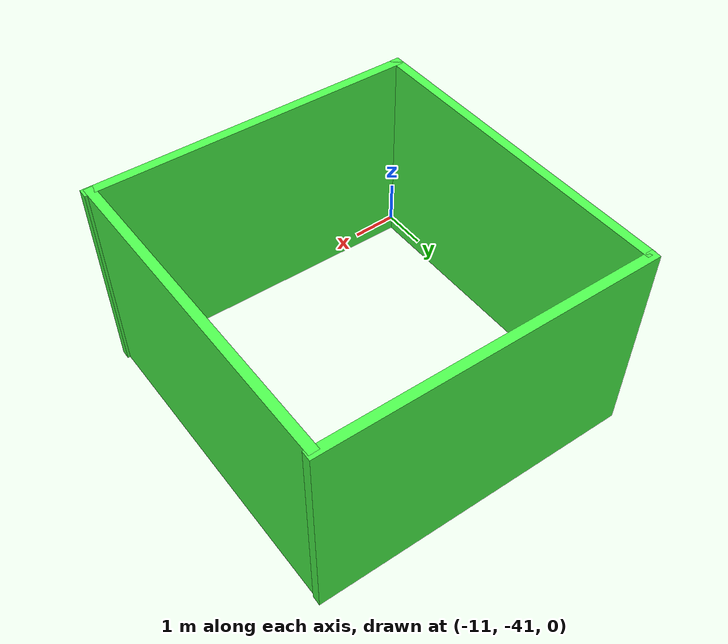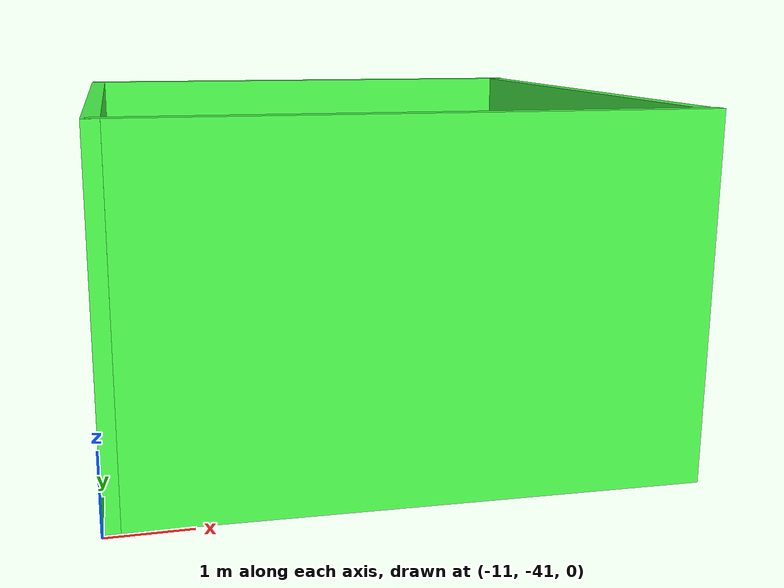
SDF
<sdf version="1.7">
 <world name="default">
  <model name="wall_clone_1">
   <pose>-7.5 -37.5 2.25 0 -0 0</pose>
   <frame name="closed_green_wall::__model__" attached_to="closed_green_wall::link_0">
    <pose relative_to="__model__">0 0 0 0 -0 0</pose>
   </frame>
   <link name="closed_green_wall::link_0">
    <inertial>
     <mass>1</mass>
     <inertia>
      <ixx>0.166667</ixx>
      <ixy>0</ixy>
      <ixz>0</ixz>
      <iyy>0.166667</iyy>
      <iyz>0</iyz>
      <izz>0.166667</izz>
     </inertia>
    </inertial>
    <pose relative_to="closed_green_wall::__model__">3.37098 -0.107634 -0 0 -0 0</pose>
    <visual name="visual">
     <geometry><box><size>0.2 7 4.5</size></box></geometry>
     <material>
      <lighting>1</lighting>
      <script><uri>file://media/materials/scripts/gazebo.material</uri><name>Gazebo/Grey</name></script>
      <shader type="vertex"><normal_map>__default__</normal_map></shader>
      <ambient>0.3 1 0.3 1</ambient>
      <diffuse>0.7 0.7 0.7 1</diffuse>
      <specular>0.01 0.01 0.01 1</specular>
      <emissive>0 0 0 1</emissive>
     </material>
    </visual>
    <collision name="collision">
     <geometry><box><size>0.2 7 4.5</size></box></geometry>
     <surface>
      <friction>
       <ode><mu>1</mu><mu2>1</mu2><fdir1>0 0 0</fdir1><slip1>0</slip1><slip2>0</slip2></ode>
       <torsional>
        <coefficient>1</coefficient>
        <patch_radius>0</patch_radius>
        <surface_radius>0</surface_radius>
        <use_patch_radius>1</use_patch_radius>
        <ode><slip>0</slip></ode>
       </torsional>
      </friction>
      <bounce><restitution_coefficient>0</restitution_coefficient><threshold>1e+06</threshold></bounce>
      <contact>
       <collide_without_contact>0</collide_without_contact>
       <collide_without_contact_bitmask>1</collide_without_contact_bitmask>
       <collide_bitmask>1</collide_bitmask>
       <ode>
        <soft_cfm>0</soft_cfm>
        <soft_erp>0.2</soft_erp>
        <kp>1e+13</kp>
        <kd>1</kd>
        <max_vel>0.01</max_vel>
        <min_depth>0</min_depth>
       </ode>
       <bullet>
        <split_impulse>1</split_impulse>
        <split_impulse_penetration_threshold>-0.01</split_impulse_penetration_threshold>
        <soft_cfm>0</soft_cfm>
        <soft_erp>0.2</soft_erp>
        <kp>1e+13</kp>
        <kd>1</kd>
       </bullet>
      </contact>
     </surface>
    </collision>
   </link>
   <link name="closed_green_wall::link_0_clone">
    <inertial>
     <mass>1</mass>
     <inertia>
      <ixx>0.166667</ixx>
      <ixy>0</ixy>
      <ixz>0</ixz>
      <iyy>0.166667</iyy>
      <iyz>0</iyz>
      <izz>0.166667</izz>
     </inertia>
    </inertial>
    <pose relative_to="closed_green_wall::__model__">0.024232 -3.42805 -0 0 0 -1.59986</pose>
    <visual name="visual">
     <geometry><box><size>0.2 7 4.5</size></box></geometry>
     <material>
      <lighting>1</lighting>
      <script><uri>file://media/materials/scripts/gazebo.material</uri><name>Gazebo/Grey</name></script>
      <shader type="vertex"><normal_map>__default__</normal_map></shader>
      <ambient>0.3 1 0.3 1</ambient>
      <diffuse>0.7 0.7 0.7 1</diffuse>
      <specular>0.01 0.01 0.01 1</specular>
      <emissive>0 0 0 1</emissive>
     </material>
    </visual>
    <collision name="collision">
     <geometry><box><size>0.2 7 4.5</size></box></geometry>
     <surface>
      <friction>
       <ode><mu>1</mu><mu2>1</mu2><fdir1>0 0 0</fdir1><slip1>0</slip1><slip2>0</slip2></ode>
       <torsional>
        <coefficient>1</coefficient>
        <patch_radius>0</patch_radius>
        <surface_radius>0</surface_radius>
        <use_patch_radius>1</use_patch_radius>
        <ode><slip>0</slip></ode>
       </torsional>
      </friction>
      <bounce><restitution_coefficient>0</restitution_coefficient><threshold>1e+06</threshold></bounce>
      <contact>
       <collide_without_contact>0</collide_without_contact>
       <collide_without_contact_bitmask>1</collide_without_contact_bitmask>
       <collide_bitmask>1</collide_bitmask>
       <ode>
        <soft_cfm>0</soft_cfm>
        <soft_erp>0.2</soft_erp>
        <kp>1e+13</kp>
        <kd>1</kd>
        <max_vel>0.01</max_vel>
        <min_depth>0</min_depth>
       </ode>
       <bullet>
        <split_impulse>1</split_impulse>
        <split_impulse_penetration_threshold>-0.01</split_impulse_penetration_threshold>
        <soft_cfm>0</soft_cfm>
        <soft_erp>0.2</soft_erp>
        <kp>1e+13</kp>
        <kd>1</kd>
       </bullet>
      </contact>
     </surface>
    </collision>
   </link>
   <link name="closed_green_wall::link_0_clone_0">
    <inertial>
     <mass>1</mass>
     <inertia>
      <ixx>0.166667</ixx>
      <ixy>0</ixy>
      <ixz>0</ixz>
      <iyy>0.166667</iyy>
      <iyz>0</iyz>
      <izz>0.166667</izz>
     </inertia>
    </inertial>
    <pose relative_to="closed_green_wall::__model__">-3.40001 0.065208 -0 0 -0 0</pose>
    <visual name="visual">
     <geometry><box><size>0.2 7 4.5</size></box></geometry>
     <material>
      <lighting>1</lighting>
      <script><uri>file://media/materials/scripts/gazebo.material</uri><name>Gazebo/Grey</name></script>
      <shader type="vertex"><normal_map>__default__</normal_map></shader>
      <ambient>0.3 1 0.3 1</ambient>
      <diffuse>0.7 0.7 0.7 1</diffuse>
      <specular>0.01 0.01 0.01 1</specular>
      <emissive>0 0 0 1</emissive>
     </material>
    </visual>
    <collision name="collision">
     <geometry><box><size>0.2 7 4.5</size></box></geometry>
     <surface>
      <friction>
       <ode><mu>1</mu><mu2>1</mu2><fdir1>0 0 0</fdir1><slip1>0</slip1><slip2>0</slip2></ode>
       <torsional>
        <coefficient>1</coefficient>
        <patch_radius>0</patch_radius>
        <surface_radius>0</surface_radius>
        <use_patch_radius>1</use_patch_radius>
        <ode><slip>0</slip></ode>
       </torsional>
      </friction>
      <bounce><restitution_coefficient>0</restitution_coefficient><threshold>1e+06</threshold></bounce>
      <contact>
       <collide_without_contact>0</collide_without_contact>
       <collide_without_contact_bitmask>1</collide_without_contact_bitmask>
       <collide_bitmask>1</collide_bitmask>
       <ode>
        <soft_cfm>0</soft_cfm>
        <soft_erp>0.2</soft_erp>
        <kp>1e+13</kp>
        <kd>1</kd>
        <max_vel>0.01</max_vel>
        <min_depth>0</min_depth>
       </ode>
       <bullet>
        <split_impulse>1</split_impulse>
        <split_impulse_penetration_threshold>-0.01</split_impulse_penetration_threshold>
        <soft_cfm>0</soft_cfm>
        <soft_erp>0.2</soft_erp>
        <kp>1e+13</kp>
        <kd>1</kd>
       </bullet>
      </contact>
     </surface>
    </collision>
   </link>
   <link name="closed_green_wall::link_0_clone_clone">
    <inertial>
     <mass>1</mass>
     <inertia>
      <ixx>0.166667</ixx>
      <ixy>0</ixy>
      <ixz>0</ixz>
      <iyy>0.166667</iyy>
      <iyz>0</iyz>
      <izz>0.166667</izz>
     </inertia>
    </inertial>
    <pose relative_to="closed_green_wall::__model__">0.004806 3.47046 -0 0 0 -1.59986</pose>
    <visual name="visual">
     <geometry><box><size>0.2 7 4.5</size></box></geometry>
     <material>
      <lighting>1</lighting>
      <script><uri>file://media/materials/scripts/gazebo.material</uri><name>Gazebo/Grey</name></script>
      <shader type="vertex"><normal_map>__default__</normal_map></shader>
      <ambient>0.3 1 0.3 1</ambient>
      <diffuse>0.7 0.7 0.7 1</diffuse>
      <specular>0.01 0.01 0.01 1</specular>
      <emissive>0 0 0 1</emissive>
     </material>
    </visual>
    <collision name="collision">
     <geometry><box><size>0.2 7 4.5</size></box></geometry>
     <surface>
      <friction>
       <ode><mu>1</mu><mu2>1</mu2><fdir1>0 0 0</fdir1><slip1>0</slip1><slip2>0</slip2></ode>
       <torsional>
        <coefficient>1</coefficient>
        <patch_radius>0</patch_radius>
        <surface_radius>0</surface_radius>
        <use_patch_radius>1</use_patch_radius>
        <ode><slip>0</slip></ode>
       </torsional>
      </friction>
      <bounce><restitution_coefficient>0</restitution_coefficient><threshold>1e+06</threshold></bounce>
      <contact>
       <collide_without_contact>0</collide_without_contact>
       <collide_without_contact_bitmask>1</collide_without_contact_bitmask>
       <collide_bitmask>1</collide_bitmask>
       <ode>
        <soft_cfm>0</soft_cfm>
        <soft_erp>0.2</soft_erp>
        <kp>1e+13</kp>
        <kd>1</kd>
        <max_vel>0.01</max_vel>
        <min_depth>0</min_depth>
       </ode>
       <bullet>
        <split_impulse>1</split_impulse>
        <split_impulse_penetration_threshold>-0.01</split_impulse_penetration_threshold>
        <soft_cfm>0</soft_cfm>
        <soft_erp>0.2</soft_erp>
        <kp>1e+13</kp>
        <kd>1</kd>
       </bullet>
      </contact>
     </surface>
    </collision>
   </link>
   <joint name="closed_green_wall::link_0_JOINT_1" type="fixed">
    <parent>closed_green_wall::link_0</parent>
    <child>closed_green_wall::link_0_clone_clone</child>
    <physics>
     <ode><limit><cfm>0</cfm><erp>0.2</erp></limit><suspension><cfm>0</cfm><erp>0.2</erp></suspension></ode>
    </physics>
   </joint>
   <joint name="closed_green_wall::link_0_clone_0_JOINT_3" type="fixed">
    <parent>closed_green_wall::link_0_clone_0</parent>
    <child>closed_green_wall::link_0_clone</child>
    <physics>
     <ode><limit><cfm>0</cfm><erp>0.2</erp></limit><suspension><cfm>0</cfm><erp>0.2</erp></suspension></ode>
    </physics>
   </joint>
   <joint name="closed_green_wall::link_0_clone_JOINT_0" type="fixed">
    <parent>closed_green_wall::link_0_clone</parent>
    <child>closed_green_wall::link_0</child>
    <physics>
     <ode><limit><cfm>0</cfm><erp>0.2</erp></limit><suspension><cfm>0</cfm><erp>0.2</erp></suspension></ode>
    </physics>
   </joint>
   <joint name="closed_green_wall::link_0_clone_clone_JOINT_2" type="fixed">
    <parent>closed_green_wall::link_0_clone_clone</parent>
    <child>closed_green_wall::link_0_clone_0</child>
    <physics>
     <ode><limit><cfm>0</cfm><erp>0.2</erp></limit><suspension><cfm>0</cfm><erp>0.2</erp></suspension></ode>
    </physics>
   </joint>
   <static>1</static>
  </model>
 </world>
</sdf>
